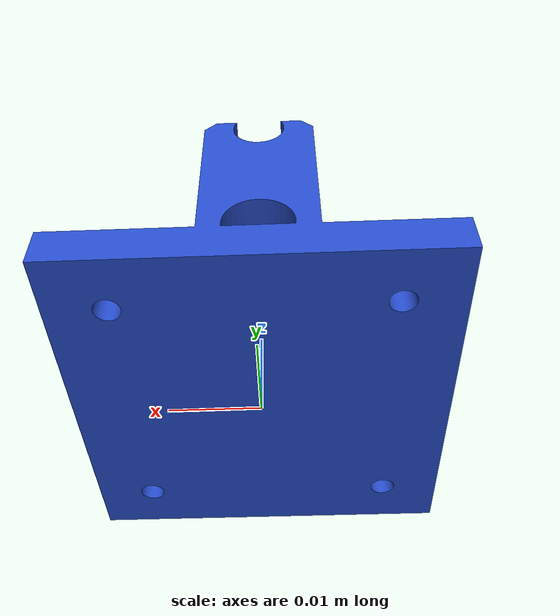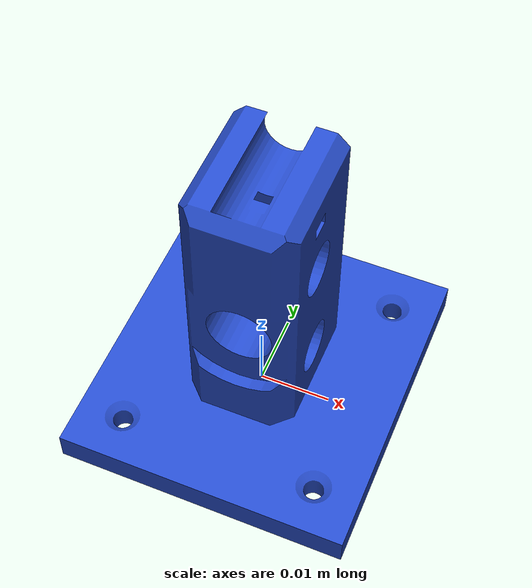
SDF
<?xml version="1.0" ?>
<sdf version="1.5">
  <model name="unob_2">
    <static>true</static>
    <link name="unob_2_link">

      <collision name="collision">
        <geometry>
          <mesh>
            <uri>model://unob_2/meshes/unob_2.dae</uri>
            <scale>0.7 0.7 0.7</scale>
          </mesh>
        </geometry>
      </collision>

      <visual name="visual">
        <geometry>
          <mesh>
            <uri>model://unob_2/meshes/unob_2.dae</uri>
            <scale>0.7 0.7 0.7</scale>
          </mesh>
        </geometry>
        <material>
          <script>
            <uri>file://media/materials/scripts/gazebo.material</uri>
            <name>Gazebo/Blue</name>
          </script>
        </material>
      </visual>
    </link>
  </model>
</sdf>
